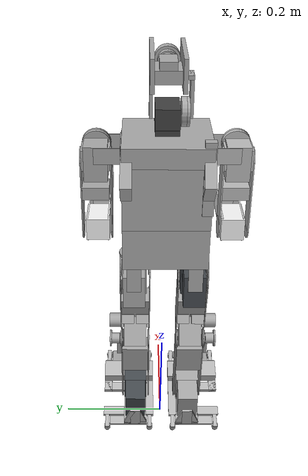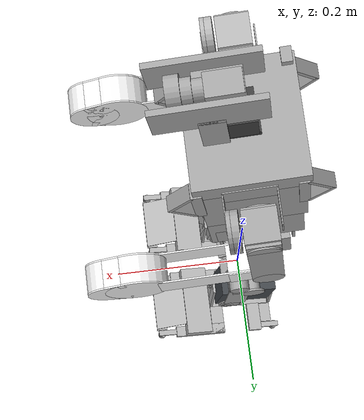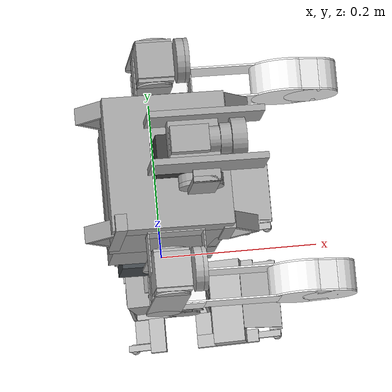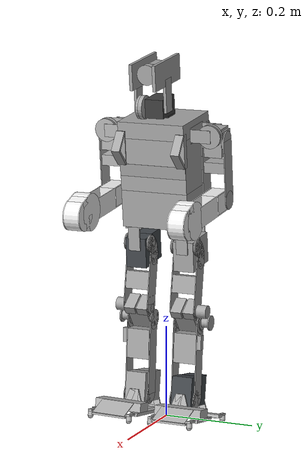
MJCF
<mujoco model="wolfgang feet only">
  <compiler angle="radian"/>

  <option iterations="3" ls_iterations="5" timestep="0.002" integrator="Euler">
    <flag eulerdamp="disable"/>
  </option>

  <default>
    <default class="humanoid">
      <default class="collision">
        <geom group="3" contype="1" conaffinity="1" />
      </default>
      <default class="visual">
        <geom material="black" contype="0" conaffinity="0" group="2" />
      </default>
      <default class="mx106">
        <joint damping="1.7" armature="0.025" frictionloss="0.1" />
        <position kp="21.0" ctrlrange="-3.141592 3.141592" forcerange="-8 8" />
      </default>
      <default class="mx64">
        <joint damping="0.66" armature="0.012" frictionloss="0.09" />
        <position kp="12.5" ctrlrange="-3.141592 3.141592" forcerange="-5 5" />
      </default>
      <default class="xh-540">
        <joint damping="1.7" armature="0.025" frictionloss="0.1" />
        <position kp="21.0" ctrlrange="-3.141592 3.141592" forcerange="-8 8" />
      </default>
      <site size="0.01" rgba="1 0 0 1" group="4"/>
    </default>
  </default>

  <asset>
    <material name="black" rgba="0.2 0.2 0.2 1" />
  </asset>

  <worldbody>
    <light name="spotlight" mode="targetbodycom" target="torso" pos="3 0 4"/>
    <body name="torso" pos="0.0 0.0 0.4274" quat="0.999 0.0 0.05 0.0" childclass="humanoid" >
      <freejoint/>
      <site name="imu"/>
      <camera name="front" pos="1.210 -0.435 0.32" xyaxes="0.342 0.940 0.000 -0.321 0.117 0.940" mode="trackcom"/>
      <camera name="track" pos="0.805 -1.105 0.2" xyaxes="0.814 0.580 0.000 -0.140 0.196 0.971" mode="trackcom"/>
      <geom size="0.0201 0.0205 0.03055" pos="0.01605 0.053 0.2035" quat="9.38184e-07 -0.707105 9.38187e-07 0.707108" type="box" rgba="0.647059 0.647059 0.647059 1" class="visual" />
      <geom size="0.0201 0.0205 0.03055" pos="0.01605 -0.053 0.2035" quat="0.707105 0 -0.707108 0" type="box" rgba="0.647059 0.647059 0.647059 1" class="visual" />
      <geom size="0.0095 0.0365 0.0065" pos="-0.0635 0.0675 0.177415" quat="0.499998 -0.5 -0.500002 0.5" type="box" rgba="0.647059 0.647059 0.647059 1" class="visual" />
      <geom size="0.0095 0.0234397 0.0025" pos="-0.0831853 0.0675 0.193936" quat="0.30209 0.639328 0.63933 0.302091" type="box" rgba="0.647059 0.647059 0.647059 1" class="visual" />
      <geom size="0.0095 0.0234397 0.0025" pos="-0.0831853 0.0675 0.160894" quat="0.30209 -0.639328 -0.63933 0.302091" type="box" rgba="0.647059 0.647059 0.647059 1" class="visual" />
      <geom size="0.07 0.02 0.022" pos="-0.0375 -0.0035 0.0295" quat="0.707105 0 0 -0.707108" type="box" rgba="0.647059 0.647059 0.647059 1" class="visual" />
      <geom size="0.0201 0.023 0.03255" pos="0.01805 -0.055 0.026" quat="0.499998 0.5 -0.500002 -0.5" type="box" rgba="0.647059 0.647059 0.647059 1" class="visual" />
      <geom size="0.0095 0.0365 0.0065" pos="0.0595 0.0675 0.177415" quat="0.499998 -0.5 0.500002 -0.5" type="box" rgba="0.647059 0.647059 0.647059 1" class="visual" />
      <geom size="0.0095 0.0234397 0.0025" pos="0.0791853 0.0675 0.193936" quat="0.30209 0.639328 -0.63933 -0.302091" type="box" rgba="0.647059 0.647059 0.647059 1" class="visual" />
      <geom size="0.0095 0.0234397 0.0025" pos="0.0791853 0.0675 0.160894" quat="0.30209 -0.639328 0.63933 -0.302091" type="box" rgba="0.647059 0.647059 0.647059 1" class="visual" />
      <geom size="0.0201 0.023 0.03255" pos="0.01805 0.055 0.026" quat="0.499998 0.5 -0.500002 -0.5" type="box" rgba="0.647059 0.647059 0.647059 1" class="visual" />
      <geom size="0.06 0.075 0.04" pos="-0.002 0 0.043" type="box" rgba="0.647059 0.647059 0.647059 1" class="visual" />
      <geom size="0.0201 0.0205 0.03055" pos="0.00805 0 0.211" quat="0.499998 -0.5 -0.500002 0.5" type="box" rgba="0.647059 0.647059 0.647059 1" class="visual" />
      <geom size="0.0095 0.065 0.0065" pos="-0.0635 -0.0675 0.177415" quat="0.499998 -0.5 -0.500002 0.5" type="box" rgba="0.647059 0.647059 0.647059 1" class="visual" />
      <geom size="0.0095 0.0234397 0.0025" pos="-0.0831853 -0.0675 0.193936" quat="0.30209 0.639328 0.63933 0.302091" type="box" rgba="0.647059 0.647059 0.647059 1" class="visual" />
      <geom size="0.0095 0.0234397 0.0025" pos="-0.0831853 -0.0675 0.160894" quat="0.30209 -0.639328 -0.63933 0.302091" type="box" rgba="0.647059 0.647059 0.647059 1" class="visual" />
      <geom size="0.0095 0.0365 0.0065" pos="0.0595 -0.0675 0.177415" quat="0.499998 -0.5 0.500002 -0.5" type="box" rgba="0.647059 0.647059 0.647059 1" class="visual" />
      <geom size="0.0095 0.0234397 0.0025" pos="0.0791853 -0.0675 0.193936" quat="0.30209 0.639328 -0.63933 -0.302091" type="box" rgba="0.647059 0.647059 0.647059 1" class="visual" />
      <geom size="0.0095 0.0234397 0.0025" pos="0.0791853 -0.0675 0.160894" quat="0.30209 -0.639328 0.63933 -0.302091" type="box" rgba="0.647059 0.647059 0.647059 1" class="visual" />
      <geom size="0.075 0.0625 0.0575" pos="-0.0045 0 0.1405" quat="0.707105 0 0 0.707108" type="box" rgba="0.647059 0.647059 0.647059 1" class="visual" />
      <geom size="0.075 0.005 0.0273829" pos="0.053 0 0.115383" quat="0.706352 0.0326317 0.0326318 0.706355" type="box" rgba="0.647059 0.647059 0.647059 1" class="visual" />
      <geom size="0.075 0.005 0.0327252" pos="0.058 0 0.175725" quat="0.707105 0 0 0.707108" type="box" rgba="0.647059 0.647059 0.647059 1" class="visual" />
      <geom size="0.075 0.068 0.0175" pos="-0.005 0 0.2155" quat="0.707105 0 0 0.707108" type="box" rgba="0.647059 0.647059 0.647059 1" class="visual" />
      <body name="r_shoulder" pos="-0.0015 -0.0765 0.2035" quat="1.32679e-06 0 0 -1">
        <inertial pos="-0.0135397 0.0284022 -1.54699e-06" quat="0.180501 0.68368 -0.180422 0.683703" mass="0.041445" diaginertia="3.49573e-05 3.19948e-05 1.42174e-05" />
        <geom size="0.025 0.0025" pos="-0.02845 0.042 0" quat="0.499998 -0.5 -0.500002 0.5" type="cylinder" rgba="0.717647 0.717647 0.717647 1" class="visual" />
        <geom size="0.025 0.0045" pos="-0.02145 0.042 0" quat="0.499998 -0.5 -0.500002 0.5" type="cylinder" rgba="0.717647 0.717647 0.717647 1" class="visual" />
        <geom size="0.03195 0.00075 0.017" pos="0 0.00075 0" type="box" rgba="0.717647 0.717647 0.717647 1" class="visual" />
        <geom size="0.00075 0.0225 0.014" pos="0.0312 0.0225 0" type="box" rgba="0.717647 0.717647 0.717647 1" class="visual" />
        <geom size="0.00075 0.0225 0.014" pos="-0.0312 0.0225 0" type="box" rgba="0.717647 0.717647 0.717647 1" class="visual" />
        <body name="r_upper_arm" pos="-0.01695 0.042 0" quat="0.499998 0.5 -0.500002 -0.5">
          <inertial pos="9.77435e-05 -0.0325821 -0.0239229" quat="0.493157 0.506993 -0.500259 0.499495" mass="0.228498" diaginertia="0.000371168 0.000241466 0.00017944" />
          <geom size="0.0201 0.0205 0.03055" pos="0 -0.01755 -0.0235" quat="0.707105 -0.707108 0 0" type="box" rgba="0.717647 0.717647 0.717647 1" class="visual" />
          <geom size="0.02 0.001125" pos="0.025125 -0.144 -0.0235" quat="0.707105 0 -0.707108 0" type="cylinder" rgba="0.717647 0.717647 0.717647 1" class="visual" />
          <geom size="0.02 0.001125" pos="0.025125 -0.014 -0.0235" quat="0.707105 0 -0.707108 0" type="cylinder" rgba="0.717647 0.717647 0.717647 1" class="visual" />
          <geom size="0.02 0.001125 0.065" pos="0.025125 -0.079 -0.0235" quat="0.499998 -0.5 -0.5 -0.500002" type="box" rgba="0.717647 0.717647 0.717647 1" class="visual" />
          <geom size="0.018 0.02 0.00465" pos="-0.01935 -0.0105 -0.0235" quat="0.499998 -0.5 -0.500002 0.5" type="box" rgba="0.717647 0.717647 0.717647 1" class="visual" />
          <geom size="0.02 0.001125" pos="-0.025125 -0.144 -0.0235" quat="0.707105 0 0.707108 0" type="cylinder" rgba="0.717647 0.717647 0.717647 1" class="visual" />
          <geom size="0.02 0.001125" pos="-0.025125 -0.014 -0.0235" quat="0.707105 0 0.707108 0" type="cylinder" rgba="0.717647 0.717647 0.717647 1" class="visual" />
          <geom size="0.02 0.001125 0.065" pos="-0.025125 -0.079 -0.0235" quat="0.499998 -0.5 0.5 0.500002" type="box" rgba="0.717647 0.717647 0.717647 1" class="visual" />
          <geom size="0.018 0.02 0.00465" pos="0.01935 -0.0105 -0.0235" quat="0.499998 0.5 0.500002 0.5" type="box" rgba="0.717647 0.717647 0.717647 1" class="visual" />
          <geom size="0.0188 0.0115 0.023" pos="0.001 -0.0715 -0.023699" quat="0.707105 0 -0.707108 0" type="box" rgba="0.717647 0.717647 0.717647 1" class="visual" />
          <body name="r_lower_arm" pos="0.024 -0.144 -0.0235" quat="0.499998 -0.5 0.500002 -0.5">
            <inertial pos="0.000436307 -0.0605126 -0.0235553" quat="0.500185 0.49962 -0.500396 0.499799" mass="0.207774" diaginertia="0.00110076 0.001088 8.9031e-05" />
            <geom size="0.04 0.001" pos="0 -0.163682 -0.0055" quat="1.32679e-06 0 0 -1" type="cylinder" rgba="0.960784 0.960784 0.960784 1" class="visual" />
            <geom size="0.022 0.001 0.0725" pos="0.0015 -0.0631823 -0.0055" quat="9.38184e-07 -9.38187e-07 0.707108 -0.707105" type="box" rgba="0.960784 0.960784 0.960784 1" class="visual" />
            <geom size="0.032 0.001" pos="0 -0.193682 -0.0055" quat="1.32679e-06 0 0 -1" type="cylinder" rgba="0.960784 0.960784 0.960784 1" class="visual" />
            <geom size="0.006 0.001 0.0145" pos="-0.0282 -0.187682 -0.0055" quat="0.701469 -0.701472 -0.0891014 0.089101" type="box" rgba="0.960784 0.960784 0.960784 1" class="visual" />
            <geom size="0.006 0.001 0.0145" pos="0.0282 -0.187682 -0.0055" quat="0.701469 -0.701472 0.0891014 -0.089101" type="box" rgba="0.960784 0.960784 0.960784 1" class="visual" />
            <geom size="0.0201 0.0205 0.03055" pos="0 -0.01755 -0.0235" quat="0.707105 -0.707108 0 0" type="box" rgba="0.960784 0.960784 0.960784 1" class="visual" />
            <geom size="0.04 0.017" pos="0 -0.163682 -0.0235" quat="1.32679e-06 -1 0 0" type="cylinder" rgba="0.960784 0.960784 0.960784 1" class="visual" />
            <geom size="0.032 0.017" pos="0 -0.193682 -0.0235" quat="1.32679e-06 -1 0 0" type="cylinder" rgba="0.960784 0.960784 0.960784 1" class="visual" />
            <geom size="0.006 0.017 0.0145" pos="0.0282 -0.187682 -0.0235" quat="0.0891027 0.089103 0.701472 0.701469" type="box" rgba="0.960784 0.960784 0.960784 1" class="visual" />
            <geom size="0.006 0.017 0.0145" pos="-0.0282 -0.187682 -0.0235" quat="0.0891027 0.089103 -0.701472 -0.701469" type="box" rgba="0.960784 0.960784 0.960784 1" class="visual" />
            <geom size="0.04 0.001" pos="0 -0.163682 -0.0415" quat="1.32679e-06 0 0 -1" type="cylinder" rgba="0.960784 0.960784 0.960784 1" class="visual" />
            <geom size="0.022 0.001 0.0725" pos="0.0015 -0.0631823 -0.0415" quat="9.38184e-07 -9.38187e-07 0.707108 -0.707105" type="box" rgba="0.960784 0.960784 0.960784 1" class="visual" />
            <geom size="0.032 0.001" pos="0 -0.193682 -0.0415" quat="1.32679e-06 0 0 -1" type="cylinder" rgba="0.960784 0.960784 0.960784 1" class="visual" />
            <geom size="0.006 0.001 0.0145" pos="-0.0282 -0.187682 -0.0415" quat="0.701469 -0.701472 -0.0891014 0.089101" type="box" rgba="0.960784 0.960784 0.960784 1" class="visual" />
            <geom size="0.006 0.001 0.0145" pos="0.0282 -0.187682 -0.0415" quat="0.701469 -0.701472 0.0891014 -0.089101" type="box" rgba="0.960784 0.960784 0.960784 1" class="visual" />
          </body>
        </body>
      </body>
      <body name="l_shoulder" pos="-0.0015 0.0765 0.2035" quat="1.7603e-12 -1.32679e-06 -1 1.32679e-06">
        <inertial pos="-0.0135397 0.0284022 1.54699e-06" quat="0.180422 0.683703 -0.180501 0.68368" mass="0.041445" diaginertia="3.49573e-05 3.19948e-05 1.42174e-05" />
        <geom size="0.025 0.0025" pos="-0.02845 0.042 0" quat="0.499998 0.5 -0.500002 -0.5" type="cylinder" rgba="0.647059 0.647059 0.647059 1" class="visual" />
        <geom size="0.03195 0.00075 0.017" pos="0 0.00075 0" type="box" rgba="0.647059 0.647059 0.647059 1" class="visual" />
        <geom size="0.00075 0.0225 0.014" pos="0.0312 0.0225 0" type="box" rgba="0.647059 0.647059 0.647059 1" class="visual" />
        <geom size="0.00075 0.0225 0.014" pos="-0.0312 0.0225 0" type="box" rgba="0.647059 0.647059 0.647059 1" class="visual" />
        <geom size="0.025 0.0045" pos="-0.02145 0.042 0" quat="0.499998 0.5 -0.500002 -0.5" type="cylinder" rgba="0.647059 0.647059 0.647059 1" class="visual" />
        <body name="l_upper_arm" pos="-0.01695 0.042 0" quat="0.499998 -0.5 -0.500002 0.5">
          <inertial pos="9.77435e-05 -0.0325821 -0.0239229" quat="0.493157 0.506993 -0.500259 0.499495" mass="0.228498" diaginertia="0.000371168 0.000241466 0.00017944" />
          <geom size="0.0201 0.0205 0.03055" pos="0 -0.01755 -0.0235" quat="0.707105 -0.707108 0 0" type="box" rgba="0.647059 0.647059 0.647059 1" class="visual" />
          <geom size="0.018 0.02 0.00465" pos="-0.01935 -0.0105 -0.0235" quat="0.499998 -0.5 -0.500002 0.5" type="box" rgba="0.647059 0.647059 0.647059 1" class="visual" />
          <geom size="0.018 0.02 0.00465" pos="0.01935 -0.0105 -0.0235" quat="0.499998 0.5 0.500002 0.5" type="box" rgba="0.647059 0.647059 0.647059 1" class="visual" />
          <geom size="0.0188 0.0115 0.023" pos="0.001 -0.0715 -0.023699" quat="0.707105 0 -0.707108 0" type="box" rgba="0.647059 0.647059 0.647059 1" class="visual" />
          <geom size="0.02 0.001125" pos="-0.025125 -0.144 -0.0235" quat="0.707105 0 0.707108 0" type="cylinder" rgba="0.647059 0.647059 0.647059 1" class="visual" />
          <geom size="0.02 0.001125" pos="-0.025125 -0.014 -0.0235" quat="0.707105 0 0.707108 0" type="cylinder" rgba="0.647059 0.647059 0.647059 1" class="visual" />
          <geom size="0.02 0.001125 0.065" pos="-0.025125 -0.079 -0.0235" quat="0.499998 -0.5 0.5 0.500002" type="box" rgba="0.647059 0.647059 0.647059 1" class="visual" />
          <geom size="0.02 0.001125" pos="0.025125 -0.144 -0.0235" quat="0.707105 0 -0.707108 0" type="cylinder" rgba="0.647059 0.647059 0.647059 1" class="visual" />
          <geom size="0.02 0.001125" pos="0.025125 -0.014 -0.0235" quat="0.707105 0 -0.707108 0" type="cylinder" rgba="0.647059 0.647059 0.647059 1" class="visual" />
          <geom size="0.02 0.001125 0.065" pos="0.025125 -0.079 -0.0235" quat="0.499998 -0.5 -0.5 -0.500002" type="box" rgba="0.647059 0.647059 0.647059 1" class="visual" />
          <body name="l_lower_arm" pos="-0.024 -0.144 -0.0235" quat="0.499998 -0.5 -0.500002 0.5">
            <inertial pos="-0.000436306 -0.0605126 -0.0235553" quat="0.502963 0.497233 -0.502767 0.497003" mass="0.207774" diaginertia="0.00110076 0.00108813 8.89004e-05" />
            <geom size="0.0201 0.0205 0.03055" pos="0 -0.01755 -0.0235" quat="0.707105 -0.707108 0 0" type="box" rgba="0.960784 0.960784 0.960784 1" class="visual" />
            <geom size="0.04 0.001" pos="0 -0.163682 -0.0415" quat="1.32679e-06 -1 0 0" type="cylinder" rgba="0.960784 0.960784 0.960784 1" class="visual" />
            <geom size="0.022 0.001 0.0725" pos="-0.0015 -0.0631823 -0.0415" quat="0.707105 0.707108 0 0" type="box" rgba="0.960784 0.960784 0.960784 1" class="visual" />
            <geom size="0.032 0.001" pos="0 -0.193682 -0.0415" quat="1.32679e-06 -1 0 0" type="cylinder" rgba="0.960784 0.960784 0.960784 1" class="visual" />
            <geom size="0.006 0.001 0.0145" pos="0.0282 -0.187682 -0.0415" quat="0.0891027 0.089103 0.701472 0.701469" type="box" rgba="0.960784 0.960784 0.960784 1" class="visual" />
            <geom size="0.006 0.001 0.0145" pos="-0.0282 -0.187682 -0.0415" quat="0.0891027 0.089103 -0.701472 -0.701469" type="box" rgba="0.960784 0.960784 0.960784 1" class="visual" />
            <geom size="0.04 0.017" pos="0 -0.163682 -0.0235" quat="1.32679e-06 0 0 -1" type="cylinder" rgba="0.960784 0.960784 0.960784 1" class="visual" />
            <geom size="0.032 0.017" pos="0 -0.193682 -0.0235" quat="1.32679e-06 0 0 -1" type="cylinder" rgba="0.960784 0.960784 0.960784 1" class="visual" />
            <geom size="0.006 0.017 0.0145" pos="-0.0282 -0.187682 -0.0235" quat="0.701469 -0.701472 -0.0891014 0.089101" type="box" rgba="0.960784 0.960784 0.960784 1" class="visual" />
            <geom size="0.006 0.017 0.0145" pos="0.0282 -0.187682 -0.0235" quat="0.701469 -0.701472 0.0891014 -0.089101" type="box" rgba="0.960784 0.960784 0.960784 1" class="visual" />
            <geom size="0.04 0.001" pos="0 -0.163682 -0.0055" quat="1.32679e-06 -1 0 0" type="cylinder" rgba="0.960784 0.960784 0.960784 1" class="visual" />
            <geom size="0.022 0.001 0.0725" pos="-0.0015 -0.0631823 -0.0055" quat="0.707105 0.707108 0 0" type="box" rgba="0.960784 0.960784 0.960784 1" class="visual" />
            <geom size="0.032 0.001" pos="0 -0.193682 -0.0055" quat="1.32679e-06 -1 0 0" type="cylinder" rgba="0.960784 0.960784 0.960784 1" class="visual" />
            <geom size="0.006 0.001 0.0145" pos="0.0282 -0.187682 -0.0055" quat="0.0891027 0.089103 0.701472 0.701469" type="box" rgba="0.960784 0.960784 0.960784 1" class="visual" />
            <geom size="0.006 0.001 0.0145" pos="-0.0282 -0.187682 -0.0055" quat="0.0891027 0.089103 -0.701472 -0.701469" type="box" rgba="0.960784 0.960784 0.960784 1" class="visual" />
          </body>
        </body>
      </body>
      <body name="r_hip_1" pos="0 -0.055 0" quat="0.707105 -0.707108 0 0">
        <inertial pos="1.20984e-11 0.010315 -1.06799e-07" quat="-6.86297e-06 0.707107 -6.86297e-06 0.707107" mass="0.0689735" diaginertia="0.000110523 0.00010714 2.18955e-05" />
        <joint name="RHipYaw" pos="0 0 0" axis="0 1 0" range="-1.5708 1.5708" class="mx106" />
        <geom size="0.018 0.05 0.002" pos="0 0.0014 0" quat="0.499998 -0.5 0.5 0.500002" type="box" rgba="0.647059 0.647059 0.647059 1" class="visual" />
        <geom size="0.0130115 0.002 0.0265" pos="-0.048 0.0259 0" quat="0.499998 -0.5 0.5 0.500002" type="box" rgba="0.647059 0.647059 0.647059 1" class="visual" />
        <geom size="0.0130115 0.002 0.0265" pos="0.048 0.0259 0" quat="0.499998 -0.5 0.5 0.500002" type="box" rgba="0.647059 0.647059 0.647059 1" class="visual" />
        <geom size="0.025 0.002" pos="0 -0.0006 0.002" quat="0.499998 -0.5 0.5 0.500002" type="cylinder" rgba="0.647059 0.647059 0.647059 1" class="visual" />
        <body name="r_hip_2" pos="-0.046 0.0414 0" quat="9.38184e-07 -0.707105 9.38187e-07 0.707108">
          <inertial pos="1.38724e-05 -0.0155281 -0.0486407" quat="0.99678 0.0129755 -0.00329376 0.0790604" mass="0.319807" diaginertia="0.000268643 0.000268139 0.000121226" />
          <joint name="RHipRoll" pos="0 0 0" axis="0 0 -1" range="-1.5708 1.5708" class="mx106" />
          <geom size="0.0201 0.023 0.03255" pos="0 -0.01805 -0.026" quat="0.707105 -0.707108 0 0" type="box" rgba="0.262745 0.282353 0.301961 1" class="visual" />
          <geom size="0.014 0.003 0.00285" pos="-0.0175 -0.007 -0.04585" quat="9.38184e-07 -0.707105 -0.707108 9.38187e-07" type="box" rgba="0.262745 0.282353 0.301961 1" class="visual" />
          <geom size="0.014 0.00175 0.00295" pos="-0.01875 -0.007 -0.05165" quat="9.38184e-07 -0.707105 -0.707108 9.38187e-07" type="box" rgba="0.262745 0.282353 0.301961 1" class="visual" />
          <geom size="0.014 0.003 0.00285" pos="0.0175 -0.007 -0.04585" quat="9.38184e-07 -0.707105 0.707108 -9.38187e-07" type="box" rgba="0.262745 0.282353 0.301961 1" class="visual" />
          <geom size="0.014 0.00175 0.00295" pos="0.01875 -0.007 -0.05165" quat="9.38184e-07 -0.707105 0.707108 -9.38187e-07" type="box" rgba="0.262745 0.282353 0.301961 1" class="visual" />
          <geom size="0.0201 0.023 0.03255" pos="0 -0.01805 -0.0691" quat="0.499998 -0.5 -0.5 -0.500002" type="box" rgba="0.262745 0.282353 0.301961 1" class="visual" />
          <body name="r_upper_leg" pos="-0.0265 0 -0.0691" quat="0.499998 -0.5 0.5 0.500002">
            <inertial pos="0.00493985 -0.0283223 -0.133144" quat="0.995752 -0.00919328 -0.0209573 0.0891915" mass="0.242311" diaginertia="0.000503914 0.000457532 0.000112612" />
            <joint name="RHipPitch" pos="0 0 0" axis="0 1 0" range="-2.0944 1.91986" class="mx106" />
            <geom size="0.021 0.0089913 0.01225" pos="0.0157399 -0.04075 -0.134486" quat="0.183014 0.183012 -0.683014 0.683011" type="box" rgba="0.647059 0.647059 0.647059 1" class="visual" />
            <geom size="0.017 0.0124063 0.002" pos="0.0140324 -0.051 -0.137444" quat="0.183014 0.183012 -0.683014 0.683011" type="box" rgba="0.647059 0.647059 0.647059 1" class="visual" />
            <geom size="0.018 0.001" pos="0 0.001 0" quat="0.707105 0.707108 0 0" type="cylinder" rgba="0.647059 0.647059 0.647059 1" class="visual" />
            <geom size="0.01 0.001" pos="0.009329 0.001 -0.143" quat="0.707105 0.707108 0 0" type="cylinder" rgba="0.647059 0.647059 0.647059 1" class="visual" />
            <geom size="0.02 0.001" pos="0.0148403 0.001 -0.132659" quat="0.707105 0.707108 0 0" type="cylinder" rgba="0.647059 0.647059 0.647059 1" class="visual" />
            <geom size="0.019 0.001 0.0510495" pos="0.00259365 0.001 -0.0830903" quat="0.991445 0 -0.130526 0" type="box" rgba="0.647059 0.647059 0.647059 1" class="visual" />
            <geom size="0.005 0.001 0.005" pos="0.00161489 0.001 -0.0253454" quat="0.130526 1.14226e-06 0.991445 1.14226e-06" type="box" rgba="0.647059 0.647059 0.647059 1" class="visual" />
            <geom size="0.01 0.001" pos="0.009329 0.001 -0.143" quat="0.707105 0.707108 0 0" type="cylinder" rgba="0.647059 0.647059 0.647059 1" class="visual" />
            <geom size="0.017 0.001" pos="-0.00400978 0.001 -0.00242195" quat="0.707105 0.707108 0 0" type="cylinder" rgba="0.647059 0.647059 0.647059 1" class="visual" />
            <geom size="0.017 0.001" pos="-0.00770728 0.001 -0.00682845" quat="0.707105 0.707108 0 0" type="cylinder" rgba="0.647059 0.647059 0.647059 1" class="visual" />
            <geom size="0.017 0.001" pos="-0.0105834 0.001 -0.0118101" quat="0.707105 0.707108 0 0" type="cylinder" rgba="0.647059 0.647059 0.647059 1" class="visual" />
            <geom size="0.017 0.001" pos="-0.0125508 0.001 -0.0172154" quat="0.707105 0.707108 0 0" type="cylinder" rgba="0.647059 0.647059 0.647059 1" class="visual" />
            <geom size="0.017 0.001" pos="-0.0135497 0.001 -0.0228803" quat="0.707105 0.707108 0 0" type="cylinder" rgba="0.647059 0.647059 0.647059 1" class="visual" />
            <geom size="0.017 0.001" pos="-0.0135497 0.001 -0.0286326" quat="0.707105 0.707108 0 0" type="cylinder" rgba="0.647059 0.647059 0.647059 1" class="visual" />
            <geom size="0.017 0.001" pos="-0.0125508 0.001 -0.0342975" quat="0.707105 0.707108 0 0" type="cylinder" rgba="0.647059 0.647059 0.647059 1" class="visual" />
            <geom size="0.018 0.001" pos="-2.3657e-07 -0.052 -3.21056e-07" quat="0.183014 0.183012 -0.683014 0.683011" type="cylinder" rgba="0.647059 0.647059 0.647059 1" class="visual" />
            <geom size="0.017 0.02925 0.022" pos="0.00382705 -0.0265 -0.15562" quat="0.183014 0.183012 -0.683014 0.683011" type="box" rgba="0.647059 0.647059 0.647059 1" class="visual" />
            <geom size="0.014 0.011" pos="0.014 -0.066 -0.138" quat="0.707105 0.707108 0 0" type="cylinder" rgba="0.647059 0.647059 0.647059 1" class="visual" />
            <geom size="0.018 0.001" pos="-2.3657e-07 -0.001 -3.21056e-07" quat="0.183014 0.183012 -0.683014 0.683011" type="cylinder" rgba="0.647059 0.647059 0.647059 1" class="visual" />
            <geom size="0.018 0.001" pos="0 -0.054 0" quat="0.707105 0.707108 0 0" type="cylinder" rgba="0.647059 0.647059 0.647059 1" class="visual" />
            <geom size="0.01 0.001" pos="0.009329 -0.054 -0.143" quat="0.707105 0.707108 0 0" type="cylinder" rgba="0.647059 0.647059 0.647059 1" class="visual" />
            <geom size="0.02 0.001" pos="0.0148403 -0.054 -0.132659" quat="0.707105 0.707108 0 0" type="cylinder" rgba="0.647059 0.647059 0.647059 1" class="visual" />
            <geom size="0.019 0.001 0.0510495" pos="0.00259365 -0.054 -0.0830903" quat="0.991445 0 -0.130526 0" type="box" rgba="0.647059 0.647059 0.647059 1" class="visual" />
            <geom size="0.005 0.001 0.005" pos="0.00161489 -0.054 -0.0253454" quat="0.130526 1.14226e-06 0.991445 1.14226e-06" type="box" rgba="0.647059 0.647059 0.647059 1" class="visual" />
            <geom size="0.01 0.001" pos="0.009329 -0.054 -0.143" quat="0.707105 0.707108 0 0" type="cylinder" rgba="0.647059 0.647059 0.647059 1" class="visual" />
            <geom size="0.017 0.001" pos="-0.00400978 -0.054 -0.00242195" quat="0.707105 0.707108 0 0" type="cylinder" rgba="0.647059 0.647059 0.647059 1" class="visual" />
            <geom size="0.017 0.001" pos="-0.00770728 -0.054 -0.00682845" quat="0.707105 0.707108 0 0" type="cylinder" rgba="0.647059 0.647059 0.647059 1" class="visual" />
            <geom size="0.017 0.001" pos="-0.0105834 -0.054 -0.0118101" quat="0.707105 0.707108 0 0" type="cylinder" rgba="0.647059 0.647059 0.647059 1" class="visual" />
            <geom size="0.017 0.001" pos="-0.0125508 -0.054 -0.0172154" quat="0.707105 0.707108 0 0" type="cylinder" rgba="0.647059 0.647059 0.647059 1" class="visual" />
            <geom size="0.017 0.001" pos="-0.0135497 -0.054 -0.0228803" quat="0.707105 0.707108 0 0" type="cylinder" rgba="0.647059 0.647059 0.647059 1" class="visual" />
            <geom size="0.017 0.001" pos="-0.0135497 -0.054 -0.0286326" quat="0.707105 0.707108 0 0" type="cylinder" rgba="0.647059 0.647059 0.647059 1" class="visual" />
            <geom size="0.017 0.001" pos="-0.0125508 -0.054 -0.0342975" quat="0.707105 0.707108 0 0" type="cylinder" rgba="0.647059 0.647059 0.647059 1" class="visual" />
            <geom size="0.021 0.0089913 0.01225" pos="0.0161729 -0.01225 -0.134736" quat="0.683011 -0.683014 0.183012 0.183013" type="box" rgba="0.647059 0.647059 0.647059 1" class="visual" />
            <geom size="0.017 0.0124063 0.002" pos="0.0144654 -0.00200004 -0.137694" quat="0.683011 -0.683014 0.183012 0.183013" type="box" rgba="0.647059 0.647059 0.647059 1" class="visual" />
            <geom size="0.017575 0.019 0.0265" pos="0.00281079 -0.0265 -0.0836106" quat="0.0922969 -0.0922947 0.701059 0.701056" type="box" rgba="0.647059 0.647059 0.647059 1" class="visual" />
            <body name="r_lower_leg" pos="-0.00392295 -0.051 -0.169043" quat="0.991445 0 -0.130526 0">
              <inertial pos="0.00142428 0.0183569 -0.0617082" quat="0.996507 0.0805308 0.0213013 -0.00583843" mass="0.0880635" diaginertia="0.000284834 0.000243363 7.08604e-05" />
              <joint name="RKnee" pos="0 0 0" axis="0 -1 0" range="-2.96706 0" class="xh-540" ref="0.15" />
              <geom size="0.018 0.00075" pos="4.35337e-09 0.049 -2.49321e-07" quat="0.707105 0.707108 0 0" type="cylinder" rgba="0.647059 0.647059 0.647059 1" class="visual" />
              <geom size="0.018 0.001" pos="0 0.0515 -0.17" quat="0.707105 0.707108 0 0" type="cylinder" rgba="0.647059 0.647059 0.647059 1" class="visual" />
              <geom size="0.018 0.001" pos="0 0.0515 0" quat="0.707105 0.707108 0 0" type="cylinder" rgba="0.647059 0.647059 0.647059 1" class="visual" />
              <geom size="0.02 0.001" pos="-0.004 0.0515 -0.165" quat="0.707105 0.707108 0 0" type="cylinder" rgba="0.647059 0.647059 0.647059 1" class="visual" />
              <geom size="0.02 0.001" pos="0.004 0.0515 -0.005" quat="0.707105 0.707108 0 0" type="cylinder" rgba="0.647059 0.647059 0.647059 1" class="visual" />
              <geom size="0.017 0.001 0.08" pos="-9.2229e-05 0.0515 -0.085786" quat="0.999048 0 0.0436194 0" type="box" rgba="0.647059 0.647059 0.647059 1" class="visual" />
              <geom size="0.018 0.001" pos="0 -0.0025 -0.17" quat="0.707105 0.707108 0 0" type="cylinder" rgba="0.647059 0.647059 0.647059 1" class="visual" />
              <geom size="0.018 0.001" pos="0 -0.0025 0" quat="0.707105 0.707108 0 0" type="cylinder" rgba="0.647059 0.647059 0.647059 1" class="visual" />
              <geom size="0.02 0.001" pos="-0.004 -0.0025 -0.165" quat="0.707105 0.707108 0 0" type="cylinder" rgba="0.647059 0.647059 0.647059 1" class="visual" />
              <geom size="0.02 0.001" pos="0.004 -0.0025 -0.005" quat="0.707105 0.707108 0 0" type="cylinder" rgba="0.647059 0.647059 0.647059 1" class="visual" />
              <geom size="0.017 0.001 0.08" pos="-9.2229e-05 -0.0025 -0.085786" quat="0.999048 0 0.0436194 0" type="box" rgba="0.647059 0.647059 0.647059 1" class="visual" />
              <geom size="0.0322425 0.01675 0.0255" pos="0.00253479 0.024 -0.0569148" quat="0.477716 -0.477713 0.521335 0.521332" type="box" rgba="0.647059 0.647059 0.647059 1" class="visual" />
              <geom size="0.0165 0.0015" pos="0 -0.024 0" quat="0.707105 0.707108 0 0" type="cylinder" rgba="0.647059 0.647059 0.647059 1" class="visual" />
              <geom size="0.0105 0.00815" pos="0 -0.01435 0" quat="0.707105 0.707108 0 0" type="cylinder" rgba="0.647059 0.647059 0.647059 1" class="visual" />
              <geom size="0.007 0.00455 0.0155" pos="0.0125977 -0.00805 -0.0413085" quat="-0.0436194 1.38341e-06 0.999048 1.38341e-06" type="box" rgba="0.647059 0.647059 0.647059 1" class="visual" />
              <geom size="0.018 0.00075" pos="4.35337e-09 -0.00150002 -2.49321e-07" quat="0.707105 0.707108 0 0" type="cylinder" rgba="0.647059 0.647059 0.647059 1" class="visual" />
              <geom size="0.015 0.00135" pos="0 -0.0035 0.00135" quat="0.707105 0.707108 0 0" type="cylinder" rgba="0.647059 0.647059 0.647059 1" class="visual" />
              <body name="r_ankle" pos="0 0.0505 -0.17" quat="0.707105 -0.707108 0 0">
                <inertial pos="-0.0204557 -0.0155281 -0.0260036" quat="-0.0712448 0.706639 -0.050439 0.702169" mass="0.319807" diaginertia="0.000272991 0.000268476 0.000116637" />
                <joint name="RAnklePitch" pos="0 0 0" axis="0 0 -1" range="-1.74533 1.22173" class="mx106" />
                <geom size="0.014 0.003 0.00285" pos="-0.02325 -0.007 -0.0435" quat="0.499998 0.5 0.500002 0.5" type="box" rgba="0.647059 0.647059 0.647059 1" class="visual" />
                <geom size="0.014 0.00175 0.00295" pos="-0.01745 -0.007 -0.04475" quat="0.499998 0.5 0.500002 0.5" type="box" rgba="0.647059 0.647059 0.647059 1" class="visual" />
                <geom size="0.0201 0.023 0.03255" pos="-0.0431 -0.01805 -0.026" quat="0.499998 -0.5 -0.5 -0.500002" type="box" rgba="0.647059 0.647059 0.647059 1" class="visual" />
                <geom size="0.014 0.003 0.00285" pos="-0.02325 -0.007 -0.0085" quat="0.499998 -0.5 0.500002 -0.5" type="box" rgba="0.647059 0.647059 0.647059 1" class="visual" />
                <geom size="0.014 0.00175 0.00295" pos="-0.01745 -0.007 -0.00725" quat="0.499998 -0.5 0.500002 -0.5" type="box" rgba="0.647059 0.647059 0.647059 1" class="visual" />
                <geom size="0.0201 0.023 0.03255" pos="0 -0.01805 -0.026" quat="0.707105 -0.707108 0 0" type="box" rgba="0.647059 0.647059 0.647059 1" class="visual" />
                <body name="r_foot_l" pos="-0.0691 0 -0.026" quat="0.505584 0.494353 0.494351 -0.505586">
                  <inertial pos="0.0120466 0.0909614 -0.0301459" quat="0.51331 0.497032 -0.512829 0.475898" mass="0.274879" diaginertia="0.0012242 0.000943261 0.000330309" />
                  <joint name="RAnkleRoll" pos="0 0 0" axis="0 -1 0" range="-1.0472 1.0472" class="mx106" />
                  <site name="r_foot_site"/>
                  <geom size="0.004 0.02 0.002" pos="-0.03 0.0065 -0.032" quat="1 0 0 0" type="box" rgba="0.717647 0.717647 0.717647 1" class="visual" />
                  <geom size="0.024 0.05 0.002" pos="0 0.046 -0.034" type="box" rgba="0.717647 0.717647 0.717647 1" class="visual" />
                  <geom size="0.0105 0.002 0.025" pos="0 0.094 -0.011" type="box" rgba="0.717647 0.717647 0.717647 1" class="visual" />
                  <geom size="0.0105 0.002 0.025" pos="0 -0.002 -0.011" type="box" rgba="0.717647 0.717647 0.717647 1" class="visual" />
                  <geom size="0.024 0.002 0.004" pos="0 -0.002 -0.032" type="box" rgba="0.717647 0.717647 0.717647 1" class="visual" />
                  <geom size="0.007 0.002 0.022128" pos="-0.0104 -0.002 -0.0093" quat="0.987173 0 0.159653 0" type="box" rgba="0.717647 0.717647 0.717647 1" class="visual" />
                  <geom size="0.007 0.002 0.022128" pos="0.0104 -0.002 -0.0093" quat="0.987173 0 -0.159653 0" type="box" rgba="0.717647 0.717647 0.717647 1" class="visual" />
                  <geom size="0.007 0.002 0.022128" pos="-0.0104 0.094 -0.0093" quat="0.987173 0 0.159653 0" type="box" rgba="0.717647 0.717647 0.717647 1" class="visual" />
                  <geom size="0.007 0.002 0.022128" pos="0.0104 0.094 -0.0093" quat="0.987173 0 -0.159653 0" type="box" rgba="0.717647 0.717647 0.717647 1" class="visual" />
                  <geom size="0.024 0.002 0.004" pos="0 0.094 -0.032" type="box" rgba="0.717647 0.717647 0.717647 1" class="visual" />
                  <geom size="0.004 0.02 0.002" pos="0.06 0.1635 -0.032" quat="1 0 0 0" type="box" rgba="0.717647 0.717647 0.717647 1" class="visual" />
                  <geom size="0.004 0.02 0.002" pos="-0.03 0.1635 -0.032" quat="1 0 0 0" type="box" rgba="0.717647 0.717647 0.717647 1" class="visual" />
                  <geom name="r_foot_geom" size="0.077 0.053 0.00175" pos="0.015 0.092 -0.03775" quat="0.707105 0 0 -0.707108" type="box" rgba="0.717647 0.717647 0.717647 1" class="collision" />
                  <geom size="0.0095 0.039 0.00175" pos="0.015 0.0055 -0.03775" quat="0.707105 0 0 -0.707108" type="box" rgba="0.717647 0.717647 0.717647 1" class="visual" />
                  <geom size="0.008 0.039 0.00175" pos="0.015 0.177 -0.03775" quat="0.707105 0 0 -0.707108" type="box" rgba="0.717647 0.717647 0.717647 1" class="visual" />
                  <geom size="0.07 0.008 0.0035" pos="-0.03 0.085 -0.0325" quat="0.707105 0 0 -0.707108" type="box" rgba="0.717647 0.717647 0.717647 1" class="visual" />
                  <geom size="0.0395 0.008 0.0035" pos="0.06 0.1155 -0.0325" quat="0.707105 0 0 -0.707108" type="box" rgba="0.717647 0.717647 0.717647 1" class="visual" />
                  <geom size="0.01 0.022 0.0035" pos="0.046 0.025 -0.0325" quat="0.707105 0 0 -0.707108" type="box" rgba="0.717647 0.717647 0.717647 1" class="visual" />
                  <geom size="0.01 0.022 0.0035" pos="0.046 0.086 -0.0325" quat="0.707105 0 0 -0.707108" type="box" rgba="0.717647 0.717647 0.717647 1" class="visual" />
                  <geom size="0.004 0.02 0.002" pos="0.06 0.0065 -0.032" quat="1.32679e-06 0 0 1" type="box" rgba="0.717647 0.717647 0.717647 1" class="visual" />
                  <geom size="0.02 0.053 0.0095" pos="0.0149998 0.120225 -0.0192245" quat="0.707105 0 0 -0.707108" type="box" rgba="0.717647 0.717647 0.717647 1" class="visual" />
                  <geom size="0.0255 0.037 0.001" pos="0.0149998 0.1625 -0.0232245" quat="0.171497 0.685994 0.685997 -0.171495" type="box" rgba="0.717647 0.717647 0.717647 1" class="visual" />
                  <geom size="0.006 0.005" pos="-0.03 -0.007 -0.039" quat="0.707105 0 0 -0.707108" type="cylinder" rgba="0.717647 0.717647 0.717647 1" class="visual" />
                  <geom size="0.006" pos="-0.03 -0.007 -0.044" quat="0.707105 0 0 -0.707108" rgba="0.717647 0.717647 0.717647 1" class="visual" />
                  <geom size="0.006 0.005" pos="-0.03 0.177 -0.039" quat="0.707105 0 0 -0.707108" type="cylinder" rgba="0.717647 0.717647 0.717647 1" class="visual" />
                  <geom size="0.006" pos="-0.03 0.177 -0.044" quat="0.707105 0 0 -0.707108" rgba="0.717647 0.717647 0.717647 1" class="visual" />
                  <geom size="0.006 0.005" pos="0.06 0.177 -0.039" quat="0.707105 0 0 -0.707108" type="cylinder" rgba="0.717647 0.717647 0.717647 1" class="visual" />
                  <geom size="0.006" pos="0.06 0.177 -0.044" quat="0.707105 0 0 -0.707108" rgba="0.717647 0.717647 0.717647 1" class="visual" />
                  <geom size="0.006 0.005" pos="0.06 -0.007 -0.039" quat="0.707105 0 0 -0.707108" type="cylinder" rgba="0.717647 0.717647 0.717647 1" class="visual" />
                  <geom size="0.006" pos="0.06 -0.007 -0.044" quat="0.707105 0 0 -0.707108" rgba="0.717647 0.717647 0.717647 1" class="visual" />
                </body>
              </body>
            </body>
          </body>
        </body>
      </body>
      <body name="l_hip_1" pos="0 0.055 0" quat="0.707105 -0.707108 0 0">
        <inertial pos="1.20984e-11 0.010315 -1.06799e-07" quat="-6.86297e-06 0.707107 -6.86297e-06 0.707107" mass="0.0689735" diaginertia="0.000110523 0.00010714 2.18955e-05" />
        <joint name="LHipYaw" pos="0 0 0" axis="0 1 0" range="-1.5708 1.5708" class="mx106" />
        <geom size="0.018 0.05 0.002" pos="0 0.0014 0" quat="0.499998 -0.5 0.5 0.500002" type="box" rgba="0.647059 0.647059 0.647059 1" class="visual" />
        <geom size="0.0130115 0.002 0.0265" pos="-0.048 0.0259 0" quat="0.499998 -0.5 0.5 0.500002" type="box" rgba="0.647059 0.647059 0.647059 1" class="visual" />
        <geom size="0.0130115 0.002 0.0265" pos="0.048 0.0259 0" quat="0.499998 -0.5 0.5 0.500002" type="box" rgba="0.647059 0.647059 0.647059 1" class="visual" />
        <geom size="0.025 0.002" pos="0 -0.0006 0.002" quat="0.499998 -0.5 0.5 0.500002" type="cylinder" rgba="0.647059 0.647059 0.647059 1" class="visual" />
        <body name="l_hip_2" pos="-0.046 0.0414 0" quat="9.38184e-07 0.707105 9.38187e-07 -0.707108">
          <inertial pos="-3.60783e-06 -0.0155281 -0.0486443" quat="0.995779 0.0129709 0.00328276 -0.0908052" mass="0.319807" diaginertia="0.000268692 0.000268184 0.000121228" />
          <joint name="LHipRoll" pos="0 0 0" axis="0 0 -1" range="-1.5708 1.5708" class="mx106" />
          <geom size="0.014 0.003 0.00285" pos="0.0175 -0.007 -0.04585" quat="9.38184e-07 -0.707105 0.707108 -9.38187e-07" type="box" rgba="0.647059 0.647059 0.647059 1" class="visual" />
          <geom size="0.014 0.00175 0.00295" pos="0.01875 -0.007 -0.05165" quat="9.38184e-07 -0.707105 0.707108 -9.38187e-07" type="box" rgba="0.647059 0.647059 0.647059 1" class="visual" />
          <geom size="0.0201 0.023 0.03255" pos="0 -0.01805 -0.026" quat="0.707105 -0.707108 0 0" type="box" rgba="0.647059 0.647059 0.647059 1" class="visual" />
          <geom size="0.0201 0.023 0.03255" pos="0 -0.01805 -0.0691" quat="0.499998 -0.5 0.5 0.500002" type="box" rgba="0.647059 0.647059 0.647059 1" class="visual" />
          <geom size="0.014 0.003 0.00285" pos="-0.0175 -0.007 -0.04585" quat="9.38184e-07 0.707105 0.707108 9.38187e-07" type="box" rgba="0.647059 0.647059 0.647059 1" class="visual" />
          <geom size="0.014 0.00175 0.00295" pos="-0.01875 -0.007 -0.05165" quat="9.38184e-07 0.707105 0.707108 9.38187e-07" type="box" rgba="0.647059 0.647059 0.647059 1" class="visual" />
          <body name="l_upper_leg" pos="0.026 0 -0.0691" quat="0.707105 0 -0.707108 0">
            <inertial pos="-0.00463142 -0.132966 0.0263223" quat="0.711791 0.700947 -0.0442682 -0.00815018" mass="0.242311" diaginertia="0.000497319 0.000454544 0.000118674" />
            <joint name="LHipPitch" pos="0 0 0" axis="0 0 -1" range="-1.91986 2.0944" class="mx106" />
            <geom size="0.021 0.0089913 0.01225" pos="-0.0157399 -0.134486 0.01025" quat="1.28159e-06 0.965926 0.258819 3.434e-07" type="box" rgba="0.647059 0.647059 0.647059 1" class="visual" />
            <geom size="0.017 0.0124063 0.002" pos="-0.0140324 -0.137444 3.76764e-08" quat="1.28159e-06 0.965926 0.258819 3.434e-07" type="box" rgba="0.647059 0.647059 0.647059 1" class="visual" />
            <geom size="0.018 0.001" pos="4.4347e-08 -3.96328e-07 0.05" quat="1.32679e-06 -1 0 0" type="cylinder" rgba="0.647059 0.647059 0.647059 1" class="visual" />
            <geom size="0.021 0.0089913 0.01225" pos="-0.0153069 -0.134236 0.03875" quat="0.258821 0 0 -0.965925" type="box" rgba="0.647059 0.647059 0.647059 1" class="visual" />
            <geom size="0.017 0.0124063 0.002" pos="-0.0135994 -0.137194 0.049" quat="0.258821 0 0 -0.965925" type="box" rgba="0.647059 0.647059 0.647059 1" class="visual" />
            <geom size="0.017 0.02925 0.022" pos="-0.00339404 -0.15537 0.0245" quat="0.258821 0 0 -0.965925" type="box" rgba="0.647059 0.647059 0.647059 1" class="visual" />
            <geom size="0.014 0.011" pos="-0.014 -0.138 0.064" quat="0.258821 0 0 0.965925" type="cylinder" rgba="0.647059 0.647059 0.647059 1" class="visual" />
            <geom size="0.018 0.001" pos="4.4347e-08 3.96328e-07 -0.001" type="cylinder" rgba="0.647059 0.647059 0.647059 1" class="visual" />
            <geom size="0.018 0.001" pos="0 0 -0.003" quat="1.76027e-12 -1.32679e-06 1 -1.32679e-06" type="cylinder" rgba="0.647059 0.647059 0.647059 1" class="visual" />
            <geom size="0.01 0.001" pos="-0.009329 -0.143 -0.003" quat="1.76027e-12 -1.32679e-06 1 -1.32679e-06" type="cylinder" rgba="0.647059 0.647059 0.647059 1" class="visual" />
            <geom size="0.02 0.001" pos="-0.0148403 -0.132659 -0.003" quat="1.76027e-12 -1.32679e-06 1 -1.32679e-06" type="cylinder" rgba="0.647059 0.647059 0.647059 1" class="visual" />
            <geom size="0.019 0.001 0.0510495" pos="-0.00259365 -0.0830903 -0.003" quat="0.0922969 0.0922973 0.701059 0.701056" type="box" rgba="0.647059 0.647059 0.647059 1" class="visual" />
            <geom size="0.005 0.001 0.005" pos="-0.00161489 -0.0253454 -0.003" quat="0.701056 0.701059 -0.092296 -0.0922957" type="box" rgba="0.647059 0.647059 0.647059 1" class="visual" />
            <geom size="0.01 0.001" pos="-0.009329 -0.143 -0.003" quat="1.76027e-12 -1.32679e-06 1 -1.32679e-06" type="cylinder" rgba="0.647059 0.647059 0.647059 1" class="visual" />
            <geom size="0.017 0.001" pos="0.00400978 -0.00242195 -0.003" quat="1.76027e-12 -1.32679e-06 1 -1.32679e-06" type="cylinder" rgba="0.647059 0.647059 0.647059 1" class="visual" />
            <geom size="0.017 0.001" pos="0.00770728 -0.00682845 -0.003" quat="1.76027e-12 -1.32679e-06 1 -1.32679e-06" type="cylinder" rgba="0.647059 0.647059 0.647059 1" class="visual" />
            <geom size="0.017 0.001" pos="0.0105834 -0.0118101 -0.003" quat="1.76027e-12 -1.32679e-06 1 -1.32679e-06" type="cylinder" rgba="0.647059 0.647059 0.647059 1" class="visual" />
            <geom size="0.017 0.001" pos="0.0125508 -0.0172154 -0.003" quat="1.76027e-12 -1.32679e-06 1 -1.32679e-06" type="cylinder" rgba="0.647059 0.647059 0.647059 1" class="visual" />
            <geom size="0.017 0.001" pos="0.0135497 -0.0228803 -0.003" quat="1.76027e-12 -1.32679e-06 1 -1.32679e-06" type="cylinder" rgba="0.647059 0.647059 0.647059 1" class="visual" />
            <geom size="0.017 0.001" pos="0.0135497 -0.0286326 -0.003" quat="1.76027e-12 -1.32679e-06 1 -1.32679e-06" type="cylinder" rgba="0.647059 0.647059 0.647059 1" class="visual" />
            <geom size="0.017 0.001" pos="0.0125508 -0.0342975 -0.003" quat="1.76027e-12 -1.32679e-06 1 -1.32679e-06" type="cylinder" rgba="0.647059 0.647059 0.647059 1" class="visual" />
            <geom size="0.018 0.001" pos="0 0 0.052" quat="1.76058e-12 1.32679e-06 1 1.32679e-06" type="cylinder" rgba="0.647059 0.647059 0.647059 1" class="visual" />
            <geom size="0.01 0.001" pos="-0.009329 -0.143 0.052" quat="1.76058e-12 1.32679e-06 1 1.32679e-06" type="cylinder" rgba="0.647059 0.647059 0.647059 1" class="visual" />
            <geom size="0.02 0.001" pos="-0.0148403 -0.132659 0.052" quat="1.76058e-12 1.32679e-06 1 1.32679e-06" type="cylinder" rgba="0.647059 0.647059 0.647059 1" class="visual" />
            <geom size="0.019 0.001 0.0510495" pos="-0.00259365 -0.0830903 0.052" quat="0.0922969 0.0922973 0.701059 0.701056" type="box" rgba="0.647059 0.647059 0.647059 1" class="visual" />
            <geom size="0.005 0.001 0.005" pos="-0.00161489 -0.0253454 0.052" quat="0.701056 0.701059 -0.092296 -0.0922957" type="box" rgba="0.647059 0.647059 0.647059 1" class="visual" />
            <geom size="0.01 0.001" pos="-0.009329 -0.143 0.052" quat="1.76058e-12 1.32679e-06 1 1.32679e-06" type="cylinder" rgba="0.647059 0.647059 0.647059 1" class="visual" />
            <geom size="0.017 0.001" pos="0.00400978 -0.00242195 0.052" quat="1.76058e-12 1.32679e-06 1 1.32679e-06" type="cylinder" rgba="0.647059 0.647059 0.647059 1" class="visual" />
            <geom size="0.017 0.001" pos="0.00770728 -0.00682845 0.052" quat="1.76058e-12 1.32679e-06 1 1.32679e-06" type="cylinder" rgba="0.647059 0.647059 0.647059 1" class="visual" />
            <geom size="0.017 0.001" pos="0.0105834 -0.0118101 0.052" quat="1.76058e-12 1.32679e-06 1 1.32679e-06" type="cylinder" rgba="0.647059 0.647059 0.647059 1" class="visual" />
            <geom size="0.017 0.001" pos="0.0125508 -0.0172154 0.052" quat="1.76058e-12 1.32679e-06 1 1.32679e-06" type="cylinder" rgba="0.647059 0.647059 0.647059 1" class="visual" />
            <geom size="0.017 0.001" pos="0.0135497 -0.0228803 0.052" quat="1.76058e-12 1.32679e-06 1 1.32679e-06" type="cylinder" rgba="0.647059 0.647059 0.647059 1" class="visual" />
            <geom size="0.017 0.001" pos="0.0135497 -0.0286326 0.052" quat="1.76058e-12 1.32679e-06 1 1.32679e-06" type="cylinder" rgba="0.647059 0.647059 0.647059 1" class="visual" />
            <geom size="0.017 0.001" pos="0.0125508 -0.0342975 0.052" quat="1.76058e-12 1.32679e-06 1 1.32679e-06" type="cylinder" rgba="0.647059 0.647059 0.647059 1" class="visual" />
            <geom size="0.017575 0.019 0.0265" pos="-0.00281079 -0.0836106 0.0245" quat="0.991445 0 0 -0.130526" type="box" rgba="0.647059 0.647059 0.647059 1" class="visual" />
            <body name="l_lower_leg" pos="0.00435596 -0.168793 0.049" quat="0.0922969 0.0922973 0.701059 0.701056">
              <inertial pos="0.00142428 -0.0188696 -0.0617069" quat="0.996912 -0.0755929 0.0212087 0.00123263" mass="0.0880635" diaginertia="0.000285346 0.000242808 7.1906e-05" />
              <joint name="LKnee" pos="0 0 0" axis="0 1 0" range="0 2.96706" class="xh-540" ref="-0.15" />
              <geom size="0.0165 0.0015" pos="0 0.024 0" quat="0.707105 -0.707108 0 0" type="cylinder" rgba="0.647059 0.647059 0.647059 1" class="visual" />
              <geom size="0.0105 0.00815" pos="0 0.01435 0" quat="0.707105 -0.707108 0 0" type="cylinder" rgba="0.647059 0.647059 0.647059 1" class="visual" />
              <geom size="0.007 0.00455 0.0155" pos="0.0124789 0.00805 -0.0426663" quat="1.32553e-06 -0.0436194 -5.78739e-08 -0.999048" type="box" rgba="0.647059 0.647059 0.647059 1" class="visual" />
              <geom size="0.015 0.00135" pos="0 0.0035 -0.00135" quat="0.707105 -0.707108 0 0" type="cylinder" rgba="0.647059 0.647059 0.647059 1" class="visual" />
              <geom size="0.018 0.00075" pos="4.35337e-09 -0.0505 -2.49321e-07" quat="0.707105 0.707108 0 0" type="cylinder" rgba="0.647059 0.647059 0.647059 1" class="visual" />
              <geom size="0.0322425 0.01675 0.0255" pos="0.00253479 -0.024 -0.0569148" quat="0.477716 -0.477713 0.521335 0.521332" type="box" rgba="0.647059 0.647059 0.647059 1" class="visual" />
              <geom size="0.018 0.00075" pos="4.35337e-09 -1.89754e-08 -2.49321e-07" quat="0.707105 0.707108 0 0" type="cylinder" rgba="0.647059 0.647059 0.647059 1" class="visual" />
              <geom size="0.018 0.001" pos="0 -0.0515 -0.17" quat="0.707105 0.707108 0 0" type="cylinder" rgba="0.647059 0.647059 0.647059 1" class="visual" />
              <geom size="0.018 0.001" pos="0 -0.0515 0" quat="0.707105 0.707108 0 0" type="cylinder" rgba="0.647059 0.647059 0.647059 1" class="visual" />
              <geom size="0.02 0.001" pos="-0.004 -0.0515 -0.165" quat="0.707105 0.707108 0 0" type="cylinder" rgba="0.647059 0.647059 0.647059 1" class="visual" />
              <geom size="0.02 0.001" pos="0.004 -0.0515 -0.005" quat="0.707105 0.707108 0 0" type="cylinder" rgba="0.647059 0.647059 0.647059 1" class="visual" />
              <geom size="0.017 0.001 0.08" pos="-9.2229e-05 -0.0515 -0.085786" quat="0.999048 0 0.0436194 0" type="box" rgba="0.647059 0.647059 0.647059 1" class="visual" />
              <geom size="0.018 0.001" pos="0 0.0025 -0.17" quat="0.707105 0.707108 0 0" type="cylinder" rgba="0.647059 0.647059 0.647059 1" class="visual" />
              <geom size="0.018 0.001" pos="0 0.0025 0" quat="0.707105 0.707108 0 0" type="cylinder" rgba="0.647059 0.647059 0.647059 1" class="visual" />
              <geom size="0.02 0.001" pos="-0.004 0.0025 -0.165" quat="0.707105 0.707108 0 0" type="cylinder" rgba="0.647059 0.647059 0.647059 1" class="visual" />
              <geom size="0.02 0.001" pos="0.004 0.0025 -0.005" quat="0.707105 0.707108 0 0" type="cylinder" rgba="0.647059 0.647059 0.647059 1" class="visual" />
              <geom size="0.017 0.001 0.08" pos="-9.2229e-05 0.0025 -0.085786" quat="0.999048 0 0.0436194 0" type="box" rgba="0.647059 0.647059 0.647059 1" class="visual" />
              <body name="l_ankle" pos="0 -0.0505 -0.17" quat="9.38184e-07 -9.38187e-07 -0.707108 0.707105">
                <inertial pos="0.0204593 -0.0155281 -0.0260139" quat="-0.0489913 0.702167 -0.0697898 0.706888" mass="0.319807" diaginertia="0.000272939 0.000268433 0.000116635" />
                <joint name="LAnklePitch" pos="0 0 0" axis="0 0 -1" range="-1.22173 1.74533" class="mx106" />
                <geom size="0.014 0.003 0.00285" pos="0.02325 -0.007 -0.0435" quat="0.499998 0.5 -0.500002 -0.5" type="box" rgba="0.262745 0.282353 0.301961 1" class="visual" />
                <geom size="0.014 0.00175 0.00295" pos="0.01745 -0.007 -0.04475" quat="0.499998 0.5 -0.500002 -0.5" type="box" rgba="0.262745 0.282353 0.301961 1" class="visual" />
                <geom size="0.014 0.003 0.00285" pos="0.02325 -0.007 -0.0085" quat="0.499998 -0.5 -0.500002 0.5" type="box" rgba="0.262745 0.282353 0.301961 1" class="visual" />
                <geom size="0.014 0.00175 0.00295" pos="0.01745 -0.007 -0.00725" quat="0.499998 -0.5 -0.500002 0.5" type="box" rgba="0.262745 0.282353 0.301961 1" class="visual" />
                <geom size="0.0201 0.023 0.03255" pos="0 -0.01805 -0.026" quat="0.707105 -0.707108 0 0" type="box" rgba="0.262745 0.282353 0.301961 1" class="visual" />
                <geom size="0.0201 0.023 0.03255" pos="0.0431 -0.01805 -0.026" quat="0.499998 -0.5 0.5 0.500002" type="box" rgba="0.262745 0.282353 0.301961 1" class="visual" />
                <body name="l_foot_l" pos="0.0691 0 -0.026" quat="0.499998 0.5 -0.5 0.500002">
                  <inertial pos="-0.0121076 0.0909614 -0.0301459" quat="0.476206 0.512458 -0.497419 0.51302" mass="0.274879" diaginertia="0.00122374 0.000943172 0.000329929" />
                  <joint name="LAnkleRoll" pos="0 0 0" axis="0 -1 0" range="-1.0472 1.0472" class="mx106" />
                  <geom size="0.004 0.02 0.002" pos="-0.06 0.1635 -0.032" quat="1 0 0 0" type="box" rgba="0.717647 0.717647 0.717647 1" class="visual" />
                  <geom size="0.004 0.02 0.002" pos="0.03 0.0065 -0.032" quat="1.32679e-06 0 0 1" type="box" rgba="0.717647 0.717647 0.717647 1" class="visual" />
                  <geom name="l_foot_geom" size="0.077 0.053 0.00175" pos="-0.015 0.092 -0.03775" quat="0.707105 0 0 -0.707108" type="box" rgba="0.717647 0.717647 0.717647 1" class="collision" />
                  <site name="l_foot_site"/>
                  <geom size="0.0095 0.039 0.00175" pos="-0.015 0.0055 -0.03775" quat="0.707105 0 0 -0.707108" type="box" rgba="0.717647 0.717647 0.717647 1" class="visual" />
                  <geom size="0.008 0.039 0.00175" pos="-0.015 0.177 -0.03775" quat="0.707105 0 0 -0.707108" type="box" rgba="0.717647 0.717647 0.717647 1" class="visual" />
                  <geom size="0.07 0.008 0.0035" pos="0.03 0.085 -0.0325" quat="0.707105 0 0 -0.707108" type="box" rgba="0.717647 0.717647 0.717647 1" class="visual" />
                  <geom size="0.0395 0.008 0.0035" pos="-0.06 0.1155 -0.0325" quat="0.707105 0 0 -0.707108" type="box" rgba="0.717647 0.717647 0.717647 1" class="visual" />
                  <geom size="0.01 0.022 0.0035" pos="-0.046 0.025 -0.0325" quat="0.707105 0 0 -0.707108" type="box" rgba="0.717647 0.717647 0.717647 1" class="visual" />
                  <geom size="0.01 0.022 0.0035" pos="-0.046 0.086 -0.0325" quat="0.707105 0 0 -0.707108" type="box" rgba="0.717647 0.717647 0.717647 1" class="visual" />
                  <geom size="0.02 0.053 0.0095" pos="-0.0150002 0.120225 -0.0192245" quat="0.707105 0 0 -0.707108" type="box" rgba="0.717647 0.717647 0.717647 1" class="visual" />
                  <geom size="0.0255 0.037 0.001" pos="-0.0150002 0.1625 -0.0232245" quat="0.171497 0.685994 0.685997 -0.171495" type="box" rgba="0.717647 0.717647 0.717647 1" class="visual" />
                  <geom size="0.024 0.05 0.002" pos="0 0.046 -0.034" type="box" rgba="0.717647 0.717647 0.717647 1" class="visual" />
                  <geom size="0.0105 0.002 0.025" pos="0 0.094 -0.011" type="box" rgba="0.717647 0.717647 0.717647 1" class="visual" />
                  <geom size="0.0105 0.002 0.025" pos="0 -0.002 -0.011" type="box" rgba="0.717647 0.717647 0.717647 1" class="visual" />
                  <geom size="0.024 0.002 0.004" pos="0 -0.002 -0.032" type="box" rgba="0.717647 0.717647 0.717647 1" class="visual" />
                  <geom size="0.007 0.002 0.022128" pos="-0.0104 -0.002 -0.0093" quat="0.987173 0 0.159653 0" type="box" rgba="0.717647 0.717647 0.717647 1" class="visual" />
                  <geom size="0.007 0.002 0.022128" pos="0.0104 -0.002 -0.0093" quat="0.987173 0 -0.159653 0" type="box" rgba="0.717647 0.717647 0.717647 1" class="visual" />
                  <geom size="0.007 0.002 0.022128" pos="-0.0104 0.094 -0.0093" quat="0.987173 0 0.159653 0" type="box" rgba="0.717647 0.717647 0.717647 1" class="visual" />
                  <geom size="0.007 0.002 0.022128" pos="0.0104 0.094 -0.0093" quat="0.987173 0 -0.159653 0" type="box" rgba="0.717647 0.717647 0.717647 1" class="visual" />
                  <geom size="0.024 0.002 0.004" pos="0 0.094 -0.032" type="box" rgba="0.717647 0.717647 0.717647 1" class="visual" />
                  <geom size="0.004 0.02 0.002" pos="0.03 0.1635 -0.032" quat="1 0 0 0" type="box" rgba="0.717647 0.717647 0.717647 1" class="visual" />
                  <geom size="0.004 0.02 0.002" pos="-0.06 0.0065 -0.032" quat="1 0 0 0" type="box" rgba="0.717647 0.717647 0.717647 1" class="visual" />
                  <geom size="0.006 0.005" pos="-0.06 -0.007 -0.039" quat="0.707105 0 0 -0.707108" type="cylinder" rgba="0.717647 0.717647 0.717647 1" class="visual" />
                  <geom size="0.006" pos="-0.06 -0.007 -0.044" quat="0.707105 0 0 -0.707108" rgba="0.717647 0.717647 0.717647 1" class="visual" />
                  <geom size="0.006 0.005" pos="-0.06 0.177 -0.039" quat="0.707105 0 0 -0.707108" type="cylinder" rgba="0.717647 0.717647 0.717647 1" class="visual" />
                  <geom size="0.006" pos="-0.06 0.177 -0.044" quat="0.707105 0 0 -0.707108" rgba="0.717647 0.717647 0.717647 1" class="visual" />
                  <geom size="0.006 0.005" pos="0.03 0.177 -0.039" quat="0.707105 0 0 -0.707108" type="cylinder" rgba="0.717647 0.717647 0.717647 1" class="visual" />
                  <geom size="0.006" pos="0.03 0.177 -0.044" quat="0.707105 0 0 -0.707108" rgba="0.717647 0.717647 0.717647 1" class="visual" />
                  <geom size="0.006 0.005" pos="0.03 -0.007 -0.039" quat="0.707105 0 0 -0.707108" type="cylinder" rgba="0.717647 0.717647 0.717647 1" class="visual" />
                  <geom size="0.006" pos="0.03 -0.007 -0.044" quat="0.707105 0 0 -0.707108" rgba="0.717647 0.717647 0.717647 1" class="visual" />
                </body>
              </body>
            </body>
          </body>
        </body>
      </body>
      <body name="neck" pos="-0.0095 0 0.2345" quat="1.32679e-06 -1 0 0">
        <inertial pos="0.0186912 -7.75177e-05 -0.0220143" quat="-0.0168892 0.773726 -5.81151e-05 0.633295" mass="0.148233" diaginertia="6.35428e-05 5.76425e-05 3.79234e-05" />
        <geom size="0.018 0.02 0.00465" pos="0.0035 0 -0.00465" type="box" rgba="0.247059 0.247059 0.247059 1" class="visual" />
        <geom size="0.0201 0.0205 0.03055" pos="0.01845 0 -0.024" quat="9.38184e-07 0.707105 -9.38187e-07 0.707108" type="box" rgba="0.247059 0.247059 0.247059 1" class="visual" />
        <body name="head" pos="0.036 0.0235 -0.024" quat="0.707105 -0.707108 0 0">
          <inertial pos="0.000411708 0.0674937 -0.0200647" quat="0.637844 0.233437 -0.515718 0.522204" mass="0.301358" diaginertia="0.000445949 0.000352444 0.000301483" />
          <geom size="0.0215 0.0081" pos="0.0351 0.0795 -0.0235" quat="0.707105 0 -0.707108 0" type="cylinder" rgba="0.647059 0.647059 0.647059 1" class="visual" />
          <geom size="0.01675 0.006" pos="0.021 0.0795 -0.0235" quat="0.707105 0 -0.707108 0" type="cylinder" rgba="0.647059 0.647059 0.647059 1" class="visual" />
          <geom size="0.025 0.0045" pos="0 0 0.0045" type="cylinder" rgba="0.647059 0.647059 0.647059 1" class="visual" />
          <geom size="0.025 0.0025" pos="0 0 0.0115" quat="1.32679e-06 0 0 1" type="cylinder" rgba="0.647059 0.647059 0.647059 1" class="visual" />
          <geom size="0.0635 0.0275 0.00355051" pos="0.0007814 0.0775 0.00255051" quat="1 0 0 0" type="box" rgba="0.647059 0.647059 0.647059 1" class="visual" />
          <geom size="0.0635 0.0275 0.00355051" pos="0.0007814 0.0775 -0.0495505" quat="1 0 0 0" type="box" rgba="0.647059 0.647059 0.647059 1" class="visual" />
          <geom size="0.0145 0.021 0.0145" pos="-0.018 0.0795 -0.0235" quat="0.499998 -0.5 -0.5 -0.500002" type="box" rgba="0.647059 0.647059 0.647059 1" class="visual" />
          <geom size="0.014 0.006" pos="0.009 0.0795 -0.0235" quat="0.707105 0 -0.707108 0" type="cylinder" rgba="0.647059 0.647059 0.647059 1" class="visual" />
          <geom size="0.003 0.036 0.015" pos="0 0.029 -0.0505" quat="0.707105 0 -0.707108 0" type="box" rgba="0.647059 0.647059 0.647059 1" class="visual" />
          <geom size="0.003 0.036 0.015" pos="0 0.029 0.0165" quat="0.707105 0 -0.707108 0" type="box" rgba="0.647059 0.647059 0.647059 1" class="visual" />
          <geom size="0.0365 0.0035 0.015" pos="0 0.0615 -0.017" quat="0.707105 0 -0.707108 0" type="box" rgba="0.647059 0.647059 0.647059 1" class="visual" />
          <geom size="0.0225 0.011 0.0275" pos="-0.0125 0.069 -0.0235" quat="0.707105 0 -0.707108 0" type="box" rgba="0.647059 0.647059 0.647059 1" class="visual" />
        </body>
      </body>
    </body>
  </worldbody>

  <actuator>
    <position joint="RHipYaw" name="RHipYaw" class="mx106" />
    <position joint="RHipRoll" name="RHipRoll" class="mx106" />
    <position joint="RHipPitch" name="RHipPitch" class="mx106" />
    <position joint="RKnee" name="RKnee" class="xh-540" />
    <position joint="RAnklePitch" name="RAnklePitch" class="mx106" />
    <position joint="RAnkleRoll" name="RAnkleRoll" class="mx106" />
    <position joint="LHipYaw" name="LHipYaw" class="mx106" />
    <position joint="LHipRoll" name="LHipRoll" class="mx106" />
    <position joint="LHipPitch" name="LHipPitch" class="mx106" />
    <position joint="LKnee" name="LKnee" class="xh-540" />
    <position joint="LAnklePitch" name="LAnklePitch" class="mx106" />
    <position joint="LAnkleRoll" name="LAnkleRoll" class="mx106" />
  </actuator>

  <sensor>
    <gyro site="imu" name="gyro"/>
    <velocimeter site="imu" name="local_linvel"/>
    <accelerometer site="imu" name="accelerometer"/>
    <framezaxis objtype="site" objname="imu" name="upvector"/>
    <framexaxis objtype="site" objname="imu" name="forwardvector"/>
    <framelinvel objtype="site" objname="imu" name="global_linvel"/>
    <frameangvel objtype="site" objname="imu" name="global_angvel"/>
    <framepos objtype="site" objname="imu" name="position"/>
    <framequat objtype="site" objname="imu" name="orientation"/>

    <framelinvel objtype="site" objname="l_foot_site" name="l_foot_site_global_linvel"/>
    <framexaxis objtype="site" objname="l_foot_site" name="l_foot_site_upvector"/>
    <framepos objtype="site" objname="l_foot_site" name="l_foot_site_pos"/>

    <framelinvel objtype="site" objname="r_foot_site" name="r_foot_site_global_linvel"/>
    <framexaxis objtype="site" objname="r_foot_site" name="r_foot_site_upvector"/>
    <framepos objtype="site" objname="r_foot_site" name="r_foot_site_pos"/>

  </sensor>

      <keyframe>
    <key name="home"
      qpos="
    0 0 0.56
    1 0 0 0
    0.023628265148262724 -0.10401795710581162 -0.7352626990449959 -1.3228415184260092 0.5495038397740458 -0.12913515511895796
    -0.016441795868928723 0.07253788412595062 0.7420808433462046 1.334527650998329 -0.5537397918567754 0.07437380704149316"
      ctrl="
        0 0 0 0 0 0
    0 0 0 0 0 0"/>
  </keyframe>
</mujoco>
